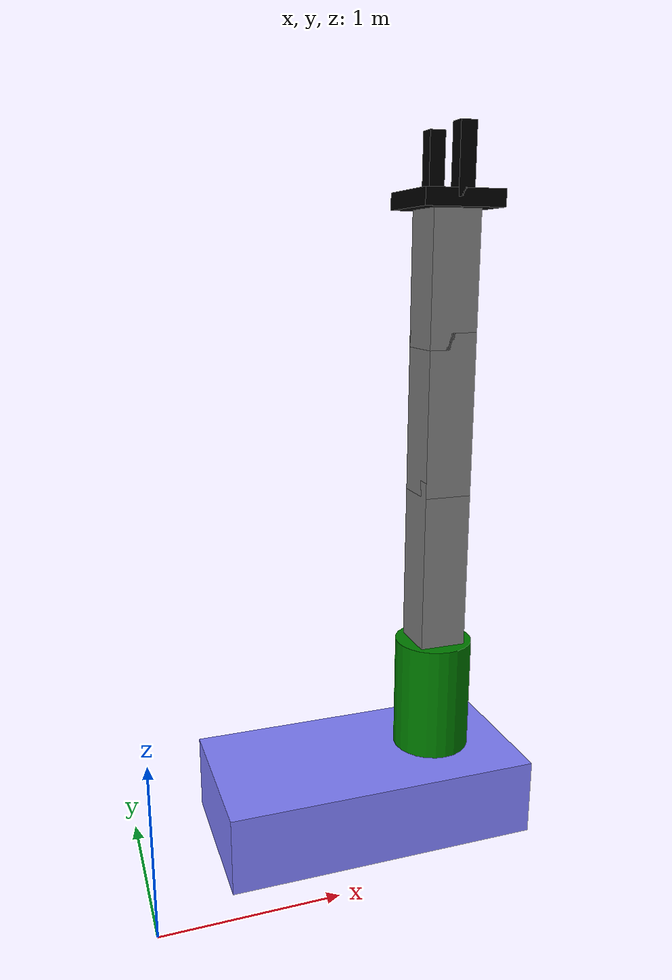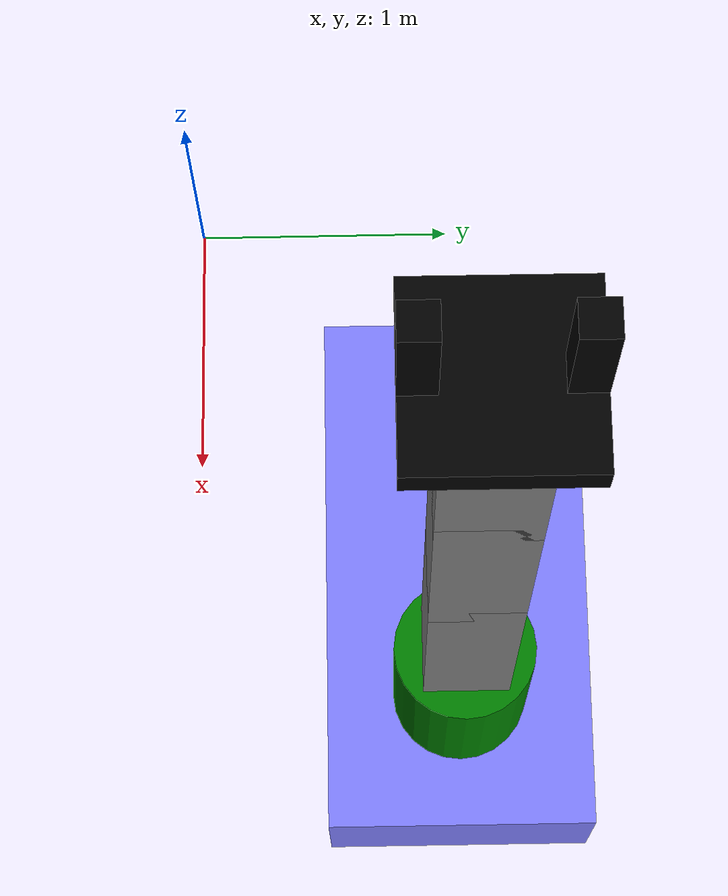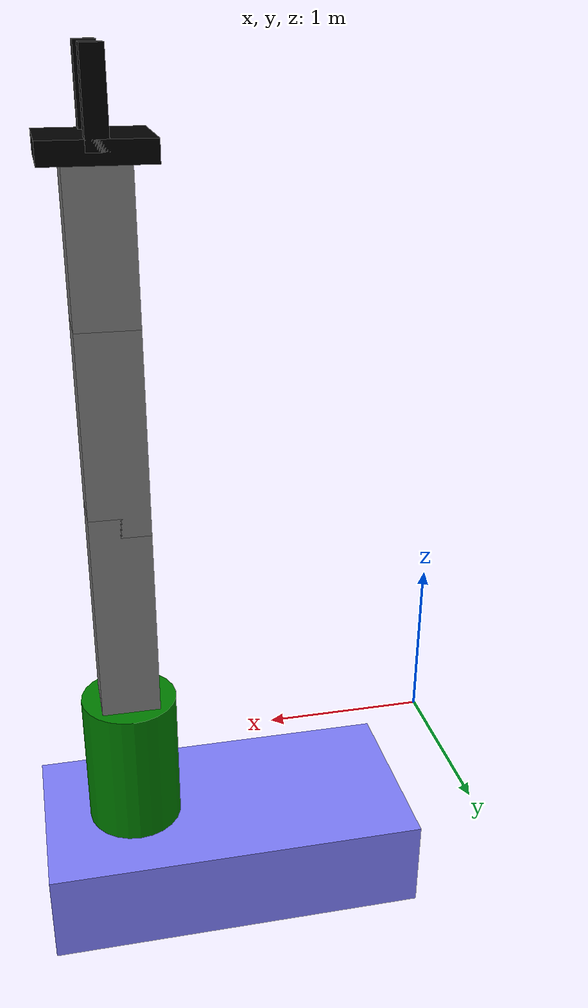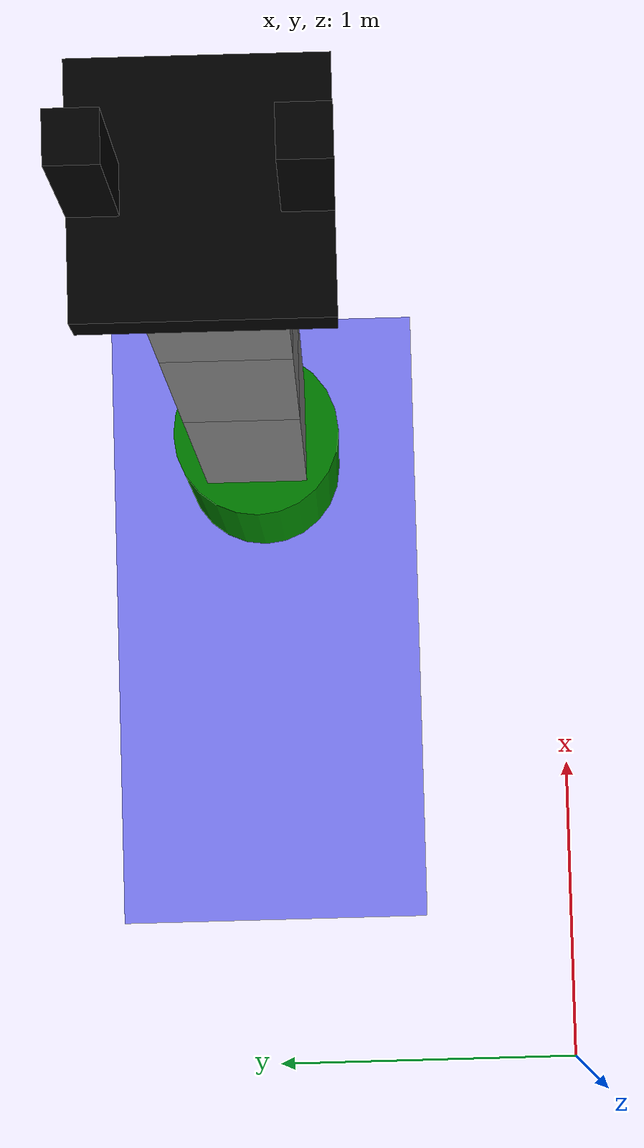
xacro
<?xml version="1.0"?>
<robot xmlns:xacro="http://www.ros.org/wiki/xacro" name="robot_arm">

    <link name="world"></link>

    <joint name="base_joint" type="fixed">
        <origin xyz="1.5 1.0 0" rpy="0 0 0"/>
        <parent link="world"/>
        <child link="base"/>
    </joint>

    <link name="base">
        <visual>
            <geometry>
                <box size="2.0 1.0 0.5"/>
            </geometry>
            <material name="light_blue">
                <color rgba="0.5 0.5 1.0 1"/>
            </material>
        </visual>
        <collision>
            <geometry>
                <box size="2.0 1.0 0.5"/>
            </geometry>
        </collision>
        <inertial>
            <mass value="1.0"/>
            <inertia ixx="0.001" ixy="0" ixz="0" iyy="0.001" iyz="0" izz="0.001"/>
        </inertial>
    </link>

    <link name="lower_body">
        <visual>
            <geometry>
                <cylinder radius="0.25" length="1.0"/>
            </geometry>
            <material name="dark_green">
                <color rgba="0.0 0.5 0.0 1"/>
            </material>
        </visual>
        <collision>
            <geometry>
                <cylinder radius="0.25" length="1.0"/>
            </geometry>
        </collision>
        <inertial>
            <mass value="1.0"/>
            <!-- Inertia tensor for a cylinder with mass=1kg, radius=0.25, and length=0.5 -->
            <inertia ixx="0.0001" ixy="0" ixz="0" iyy="0.0001" iyz="0" izz="0.0001"/>
        </inertial>
    </link>

    <joint name="servo0" type="revolute">
        <parent link="base"/>
        <child link="lower_body"/>
        <origin xyz="0.5 0 0.5" rpy="0 0 0"/>
        <axis xyz="0 0 1"/>
        <limit lower="-1.57" upper="1.57" effort="1000" velocity="2.0"/>
    </joint>

    <link name="middle_body">
        <visual>
            <origin xyz="0 0 0.5" rpy="0 0 0"/>
            <geometry>
                <box size="0.3 0.3 1.2"/>
            </geometry>
            <material name="grey">
                <color rgba="0.5 0.5 0.5 1"/>
            </material>
        </visual>
        <collision>
            <origin xyz="0 0 0.5" rpy="0 0 0"/>
            <geometry>
                <box size="0.3 0.3 1.2"/>
            </geometry>
        </collision>
        <inertial>
            <mass value="1.0"/>
            <inertia ixx="0.000117" ixy="0" ixz="0" iyy="0.000117" iyz="0" izz="0.0000117"/>
        </inertial>
    </link>

    <joint name="servo1" type="revolute">
        <parent link="lower_body"/>
        <child link="middle_body"/>
        <origin xyz="0 0 0.5" rpy="0 0 0"/>
        <axis xyz="0 -1 0"/>
        <limit lower="-1.57" upper="1.57" effort="1000" velocity="2.0"/>
    </joint>

    <link name="upper_middle_body">
        <visual>
            <origin xyz="0 0 0.6" rpy="0 0 0"/>
            <geometry>
                <box size="0.3 0.3 1.0"/>
            </geometry>
            <material name="dark_green">
                <color rgba="0.5 0.5 0.5 1"/>
            </material>
        </visual>
        <collision>
            <origin xyz="0 0 0.6" rpy="0 0 0"/>
            <geometry>
                <box size="0.3 0.3 1.0"/>
            </geometry>
        </collision>
        <inertial>
            <mass value="1.0"/>
            <inertia ixx="0.000117" ixy="0" ixz="0" iyy="0.000117" iyz="0" izz="0.0000117"/>
        </inertial>
    </link>

    <joint name="servo2" type="revolute">
        <parent link="middle_body"/>
        <child link="upper_middle_body"/>
        <origin xyz="0 0 0.9" rpy="0 0 0"/>
        <axis xyz="0 1 0"/>
        <limit lower="-1.57" upper="1.57" effort="1000" velocity="2.0"/>
    </joint>

    <link name="upper_body">
        <visual>
            <origin xyz="0 0 0.4" rpy="0 0 0"/>
            <geometry>
                <box size="0.3 0.3 0.8"/>
            </geometry>
            <material name="black">
                <color rgba="0.5 0.5 0.5 1"/>
            </material>
        </visual>
        <collision>
            <origin xyz="0 0 0.4" rpy="0 0 0"/>
            <geometry>
                <box size="0.3 0.3 0.8"/>
            </geometry>
        </collision>
        <inertial>
            <mass value="1.0"/>
            <inertia ixx="0.000117" ixy="0" ixz="0" iyy="0.000117" iyz="0" izz="0.0000117"/>
        </inertial>
    </link>

    <joint name="servo3" type="revolute">
        <parent link="upper_middle_body"/>
        <child link="upper_body"/>
        <origin xyz="0 0 1.0" rpy="0 0 0"/>
        <axis xyz="0 1 0"/>
        <limit lower="-1.57" upper="1.57" effort="1000" velocity="2.0"/>
    </joint>

    <link name="top_link">
        <visual>
            <origin xyz="0 0 0.4" rpy="0 0 0"/>
            <geometry>
                <box size="0.5 0.5 0.1"/>
            </geometry>
            <material name="dark_green">
                <color rgba="0 0 0 1"/>
            </material>
        </visual>
        <collision>
            <origin xyz="0 0 0.4" rpy="0 0 0"/>
            <geometry>
                <box size="0.5 0.5 0.1"/>
            </geometry>
        </collision>
        <inertial>
            <mass value="1.0"/>
            <inertia ixx="0.000117" ixy="0" ixz="0" iyy="0.000117" iyz="0" izz="0.0000117"/>
        </inertial>
    </link>

    <joint name="servo4" type="revolute">
        <parent link="upper_body"/>
        <child link="top_link"/>
        <origin xyz="0 0 0.45" rpy="0 0 0"/>
        <axis xyz="0 0 1"/>
        <limit lower="-1.57" upper="1.57" effort="1000" velocity="2.0"/>
    </joint>

    <link name="gripper_left_finger">
        <visual>
            <origin xyz="0 0 0.1" rpy="0 0 0"/>
            <geometry>
                <box size="0.1 0.1 0.4"/>
            </geometry>
            <material name="grey">
                <color rgba="0 0 0 1"/>
            </material>
        </visual>
        <collision>
            <origin xyz="0 0 0.1" rpy="0 0 0"/>
            <geometry>
                <box size="0.1 0.1 0.4"/>
            </geometry>
        </collision>
        <inertial>
            <mass value="1.0"/>
            <inertia ixx="0.000117" ixy="0" ixz="0" iyy="0.000117" iyz="0" izz="0.0000117"/>
        </inertial>
    </link>

    <joint name="left_gripper_joint" type="prismatic">
        <parent link="top_link"/>
        <child link="gripper_left_finger"/>
        <origin xyz="0 0.2 0.5" rpy="0 0 0"/>
        <axis xyz="0 -1 0"/>
        <limit lower="-0.3" upper="0.3" effort="100.0" velocity="1.0"/>
    </joint>

    <link name="gripper_right_finger">
        <visual>
            <origin xyz="0 0 0.1" rpy="0 0 0"/>
            <geometry>
                <box size="0.1 0.1 0.4"/>
            </geometry>
            <material name="dark_green">
                <color rgba="0 0 0 1"/>
            </material>
        </visual>
        <collision>
            <origin xyz="0 0 0.1" rpy="0 0 0"/>
            <geometry>
                <box size="0.1 0.1 0.4"/>
            </geometry>
        </collision>
        <inertial>
            <mass value="1.0"/>
            <inertia ixx="0.000117" ixy="0" ixz="0" iyy="0.000117" iyz="0" izz="0.0000117"/>
        </inertial>
    </link>

    <joint name="right_gripper_joint" type="prismatic">
        <parent link="top_link"/>
        <child link="gripper_right_finger"/>
        <origin xyz="0 -0.2 0.5" rpy="0 0 0"/>
        <axis xyz="0 1 0"/>
        <limit lower="-0.3" upper="0.3" effort="100.0" velocity="1.0"/>
    </joint>

    <gazebo>
        <plugin filename="/opt/ros/humble/lib/libign_ros2_control-system.so" name="ign_ros2_control::IgnitionROS2ControlPlugin">
            <robot_param>robot_description</robot_param>
            <robot_param_node>robot_state_publisher</robot_param_node>
            <parameters>/home/small-thinking/mnlm/mnlm/robot/robot_arm_ws/install/robot_arm/share/robot_arm/config/robot_arm_control.yaml</parameters>
        </plugin>
    </gazebo>

    <ros2_control name="GazeboSimSystem" type="system">
        <hardware>
            <plugin>ign_ros2_control/IgnitionSystem</plugin>
        </hardware>
        <joint name="servo0">
            <command_interface name="position"/>
            <state_interface name="position"/>
            <state_interface name="velocity"/>
        </joint>
        <joint name="servo1">
            <command_interface name="position"/>
            <state_interface name="position"/>
            <state_interface name="velocity"/>
        </joint>
        <joint name="servo2">
            <command_interface name="position"/>
            <state_interface name="position"/>
            <state_interface name="velocity"/>
        </joint>
        <joint name="servo3">
            <command_interface name="position"/>
            <state_interface name="position"/>
            <state_interface name="velocity"/>
        </joint>
        <joint name="servo4">
            <command_interface name="position"/>
            <state_interface name="position"/>
            <state_interface name="velocity"/>
        </joint>
        <joint name="left_gripper_joint">
            <command_interface name="position"/>
            <state_interface name="position"/>
            <state_interface name="velocity"/>
        </joint>

        <joint name="right_gripper_joint">
            <command_interface name="position"/>
            <state_interface name="position"/>
            <state_interface name="velocity"/>
        </joint>
    </ros2_control>

</robot>
